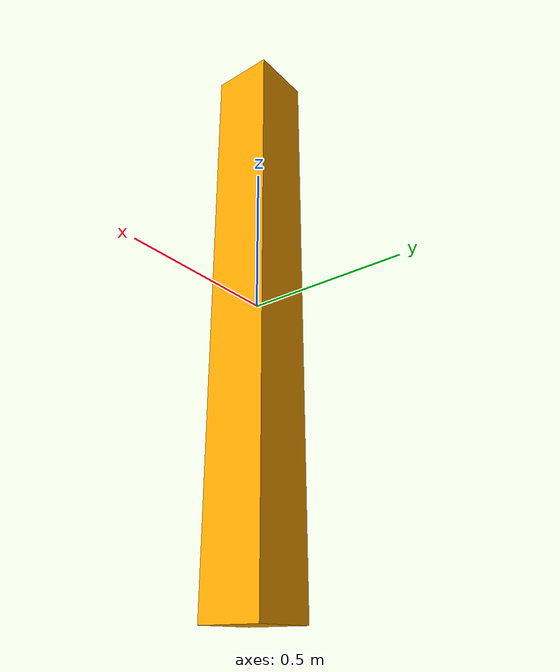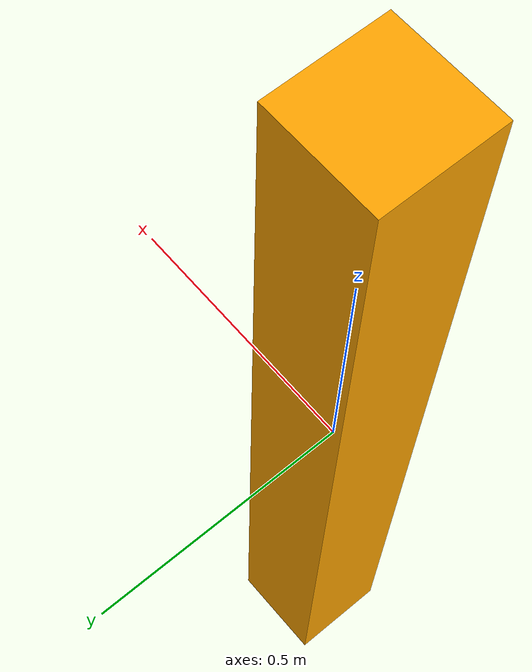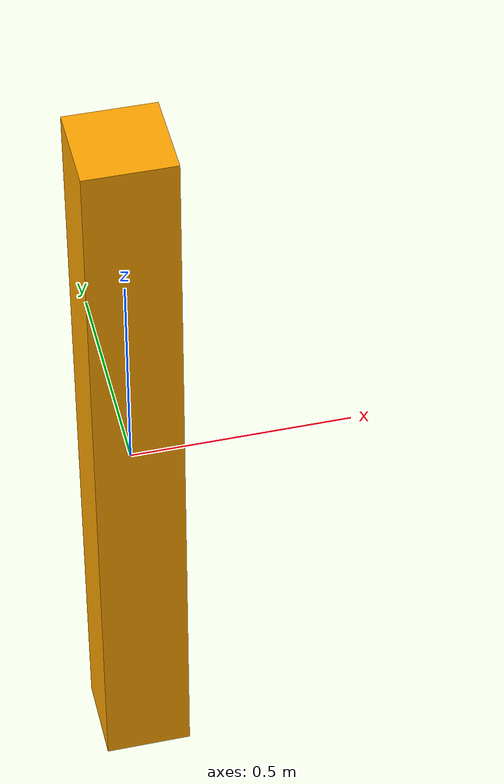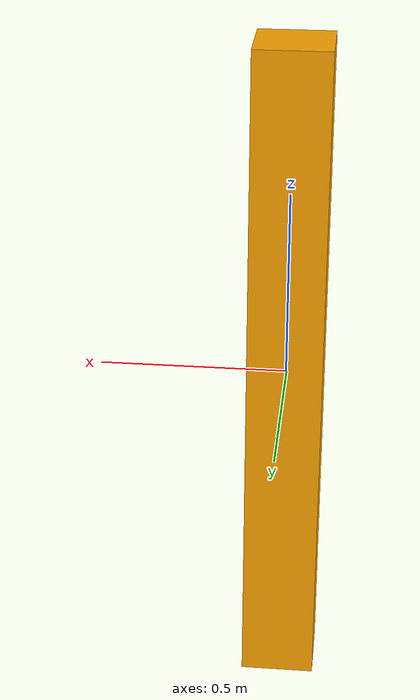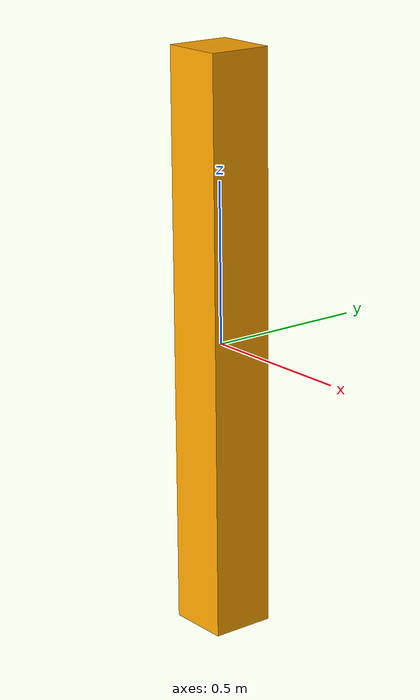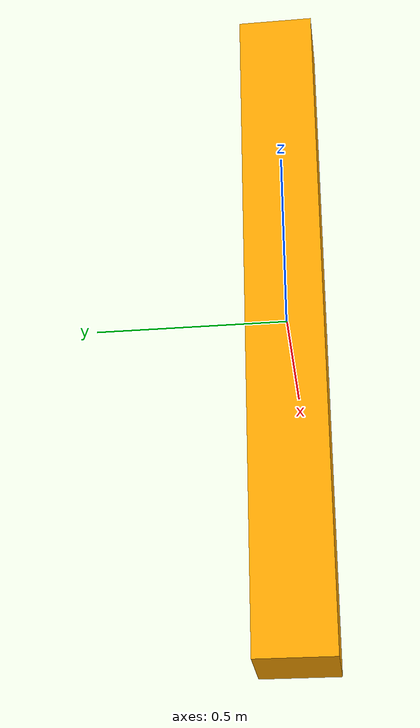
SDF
<?xml version="1.0"?>
<sdf version="1.4">
  <model name='orange_brick'>
    <pose>0 0 0 0 0 0</pose>
    <static>false</static>
    <link name='object_link'>
      <inertial>
        <mass>2.0</mass>
        <inertia> <!-- inertias are tricky to compute -->
          <!-- http://gazebosim.org/tutorials?tut=inertia&cat=build_robot -->
          <ixx>0.54448</ixx>       <!-- for a box: ixx = 0.083 * mass * (y*y + z*z) -->
          <ixy>0.0</ixy>         <!-- for a box: ixy = 0 -->
          <ixz>0.0</ixz>         <!-- for a box: ixz = 0 -->
          <iyy>0.54448</iyy>       <!-- for a box: iyy = 0.083 * mass * (x*x + z*z) -->
          <iyz>0.0</iyz>         <!-- for a box: iyz = 0 -->
          <izz>0.01328</izz>       <!-- for a box: izz = 0.083 * mass * (x*x + y*y) -->
        </inertia>
      </inertial>
      <collision name='collision'>
        <geometry>
          <box>
            <size>0.2 0.2 1.8</size>
          </box>
        </geometry>
        <max_contacts>10</max_contacts>
        <surface>
          <friction>
            <ode>
              <mu>0.3</mu>
              <mu2>0.3</mu2>
            </ode>
          </friction>
        </surface>
      </collision>
      <visual name='visual'>
        <cast_shadows>0</cast_shadows>
        <geometry>
          <box>
            <size>0.2 0.2 1.8</size>
          </box>
        </geometry>
        <material>
          <ambient>1.0 0.647 0.0 1</ambient>
          <diffuse>1.0 0.647 0.0 1</diffuse>
          <specular>0.01 0.01 0.01 1</specular>
          <emissive>0 0 0 1</emissive>
        </material>
      </visual>
      <self_collide>0</self_collide>
      <kinematic>0</kinematic>
      <gravity>1</gravity>
    </link>
  </model>
</sdf>
